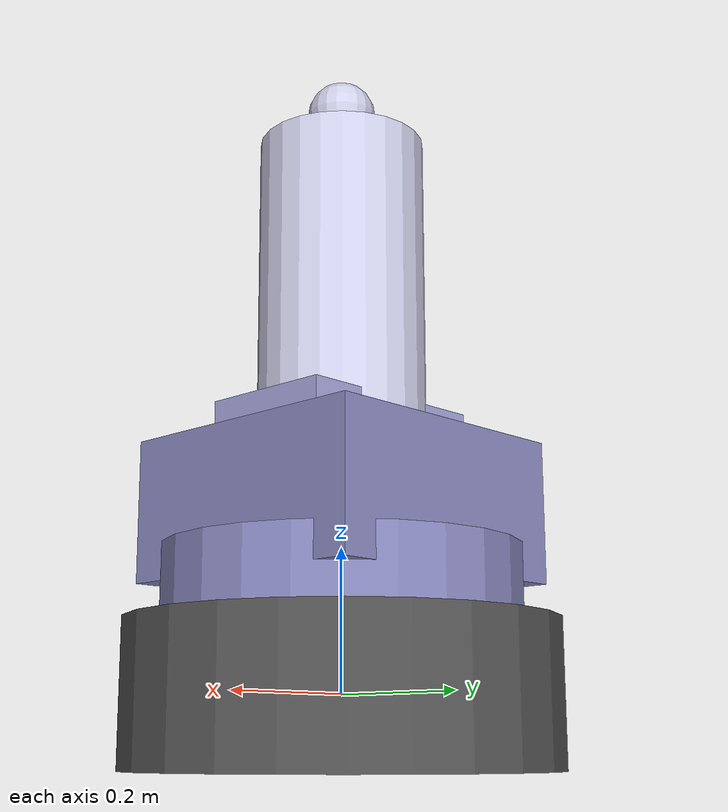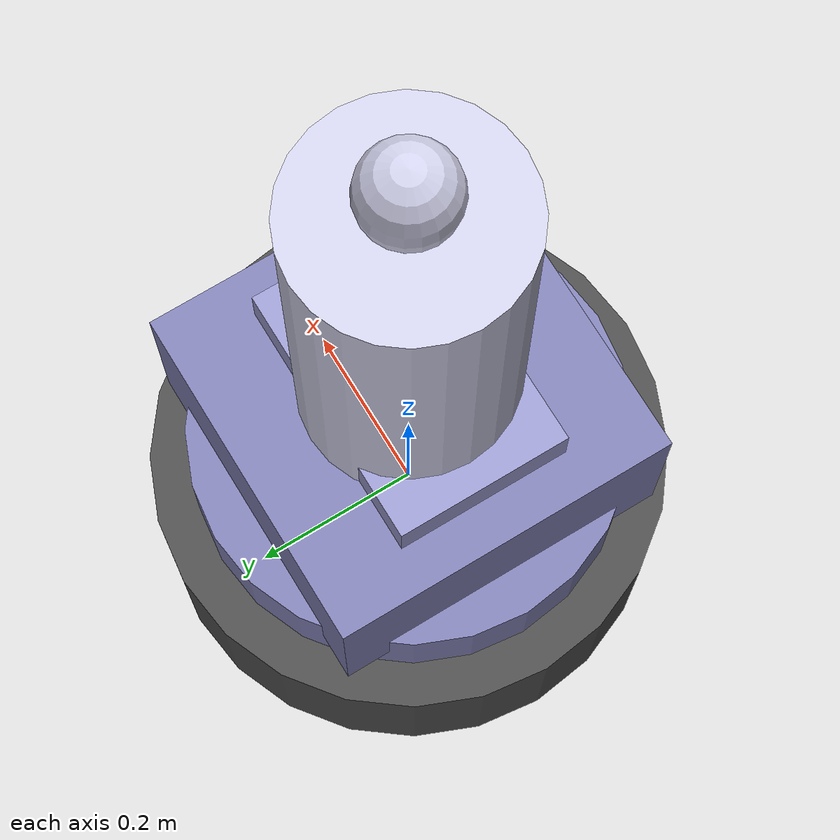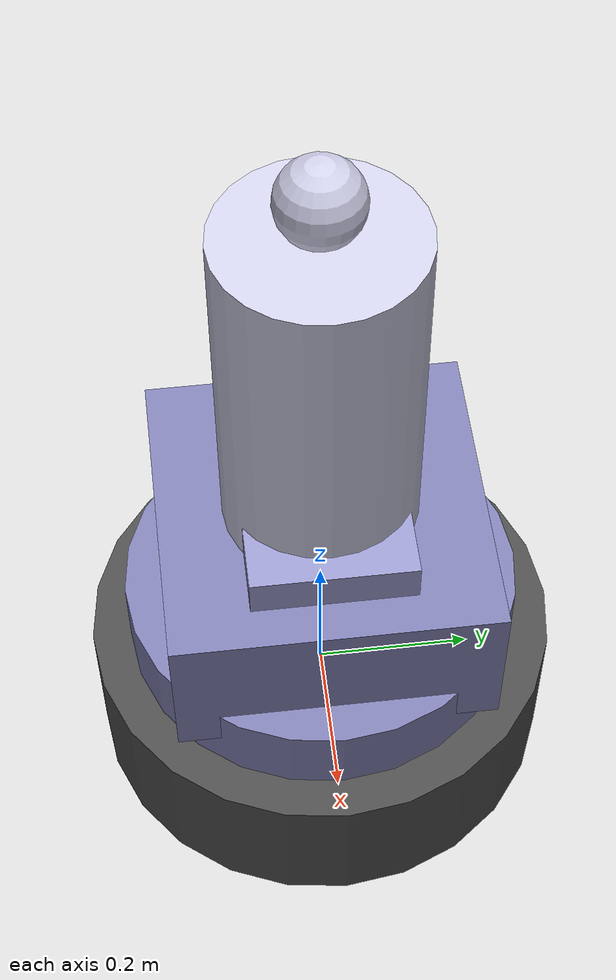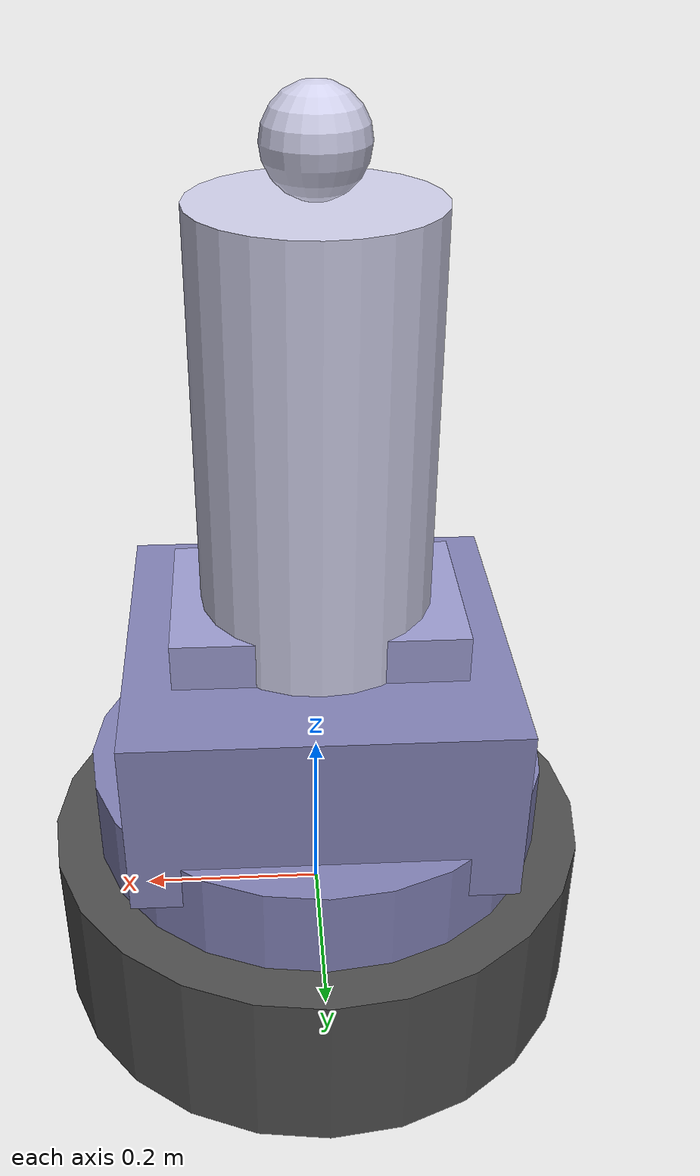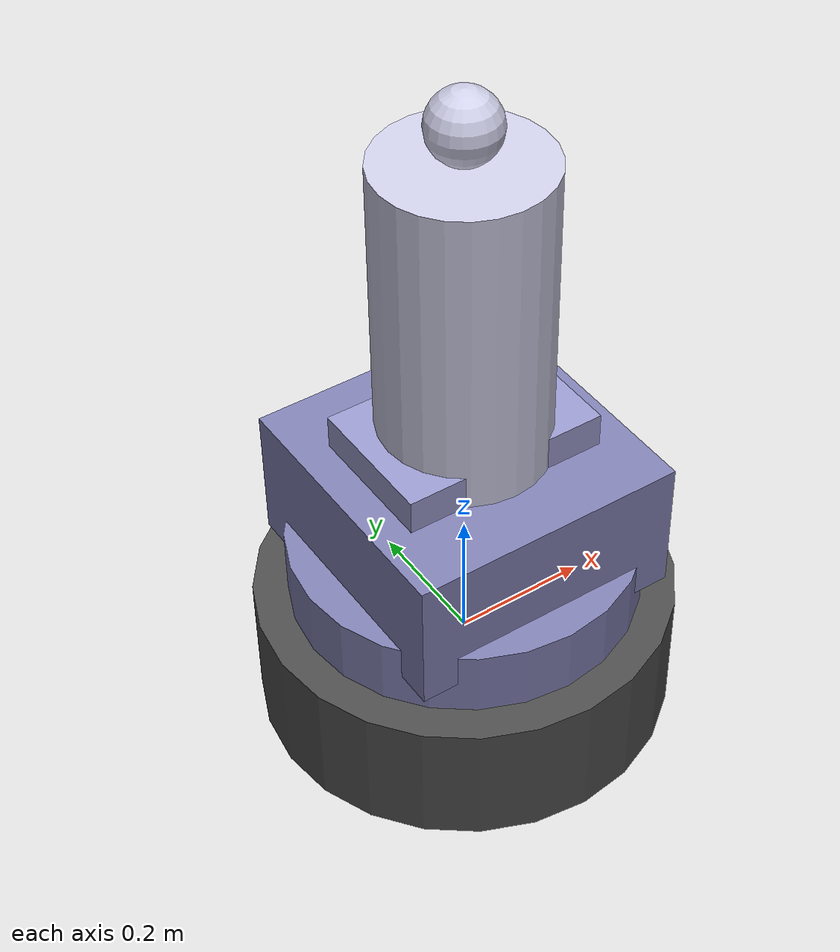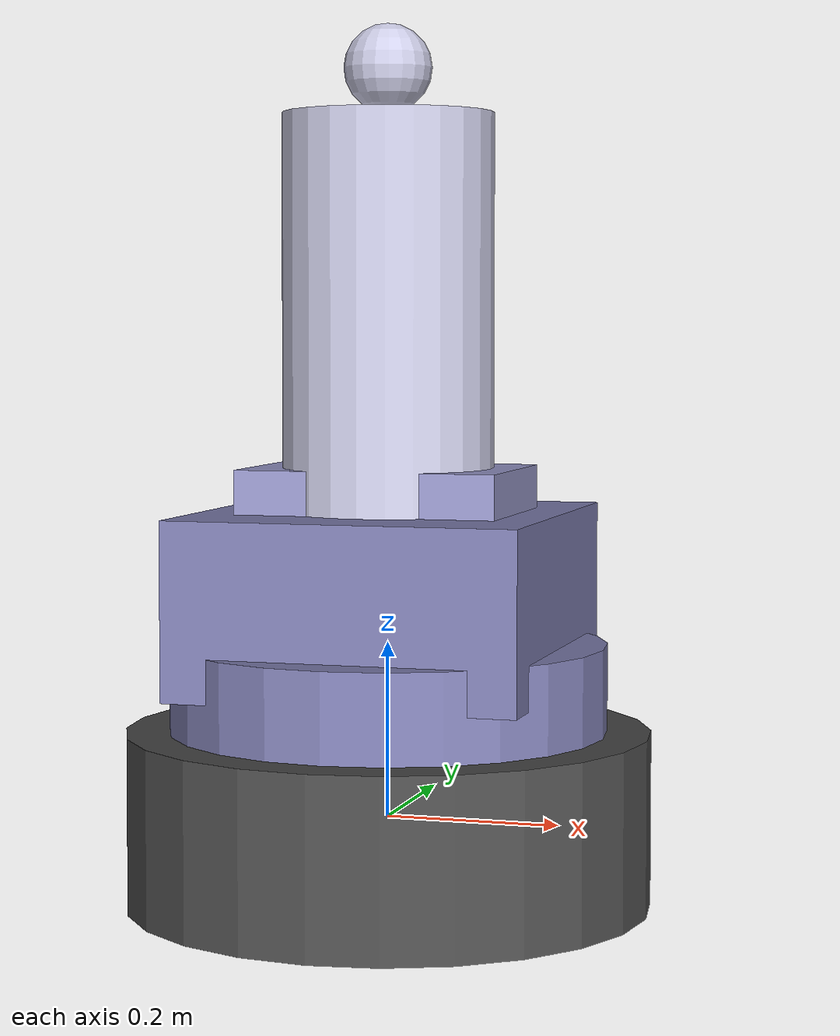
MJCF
<mujoco model="laser_comm_gimbal">

  <compiler angle="radian" coordinate="local" inertiafromgeom="auto"/>

  <option timestep="0.001" gravity="0 0 -9.81" integrator="RK4">
  </option>

  <asset>
    <!-- Material definitions for visualization -->
    <material name="base_mat" rgba="0.3 0.3 0.3 1.0"/>
    <material name="azimuth_mat" rgba="0.5 0.5 0.7 1.0"/>
    <material name="elevation_mat" rgba="0.6 0.6 0.8 1.0"/>
    <material name="payload_mat" rgba="0.8 0.8 0.9 1.0"/>
  </asset>

  <worldbody>
    <!-- Fixed base (pedestal) -->
    <body name="base" pos="0 0 0">
      <geom type="cylinder" size="0.3 0.1" rgba="0.3 0.3 0.3 1" mass="50"/>

      <!-- Azimuth stage (rotates about Z-axis) -->
      <body name="azimuth_stage" pos="0 0 0.15">
        <joint name="azimuth" type="hinge" axis="0 0 1"
               limited="false" damping="0.05" frictionloss="0.01"/>
        <geom type="cylinder" size="0.25 0.05" material="azimuth_mat" mass="20"/>
        <geom type="box" size="0.2 0.2 0.1" pos="0 0 0.1" material="azimuth_mat" mass="10"/>

        <!-- Inertial properties (approximation for azimuth axis) -->
        <inertial pos="0 0 0.05" mass="30"
                  diaginertia="2.0 2.0 1.8"/>

        <site name="az_imu_site" pos="0 0 0.1" size="0.01"/>

        <!-- Elevation stage (rotates about Y-axis in azimuth frame) -->
        <body name="elevation_stage" pos="0 0 0.2">
          <joint name="elevation" type="hinge" axis="0 1 0"
                 limited="true" range="-0.1 1.57" damping="0.05" frictionloss="0.01"/>
          <geom type="box" size="0.15 0.1 0.05" material="elevation_mat" mass="8"/>

          <!-- Inertial properties (approximation for elevation axis) -->
          <inertial pos="0 0 0.1" mass="15"
                    diaginertia="1.5 1.2 0.8"/>

          <site name="el_imu_site" pos="0 0 0.15" size="0.01"/>

          <!-- Optical payload (telescope + instruments) -->
          <body name="payload" pos="0 0 0.15">
            <geom type="cylinder" size="0.12 0.3" material="payload_mat" mass="12"/>
            <geom type="sphere" size="0.05" pos="0 0 0.35" material="payload_mat" mass="3"/>

            <!-- Inertial properties -->
            <inertial pos="0 0 0.2" mass="15"
                      diaginertia="0.5 0.5 0.3"/>
          </body>
        </body>
      </body>
    </body>
  </worldbody>

  <actuator>
    <!-- Azimuth motor (direct torque control) -->
    <motor name="az_motor" joint="azimuth" gear="1" ctrllimited="true" ctrlrange="-10 10"/>

    <!-- Elevation motor (direct torque control) -->
    <motor name="el_motor" joint="elevation" gear="1" ctrllimited="true" ctrlrange="-10 10"/>
  </actuator>

  <sensor>
    <!-- Joint position sensors (encoders) -->
    <jointpos name="az_position" joint="azimuth"/>
    <jointpos name="el_position" joint="elevation"/>

    <!-- Joint velocity sensors (tachometers/gyros) -->
    <jointvel name="az_velocity" joint="azimuth"/>
    <jointvel name="el_velocity" joint="elevation"/>

    <!-- Accelerometers (optional, for advanced estimators) -->
    <accelerometer name="az_accel" site="az_imu_site"/>
    <accelerometer name="el_accel" site="el_imu_site"/>

    <!-- Gyroscopes (optional) -->
    <gyro name="az_gyro" site="az_imu_site"/>
    <gyro name="el_gyro" site="el_imu_site"/>
  </sensor>

</mujoco>
